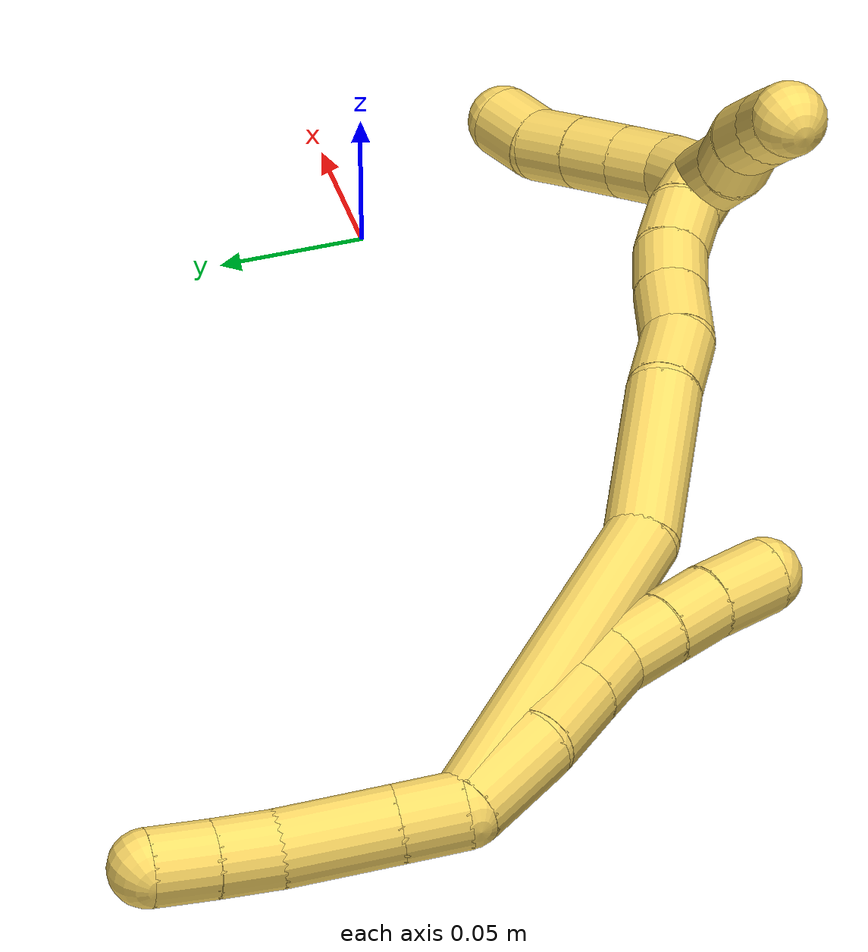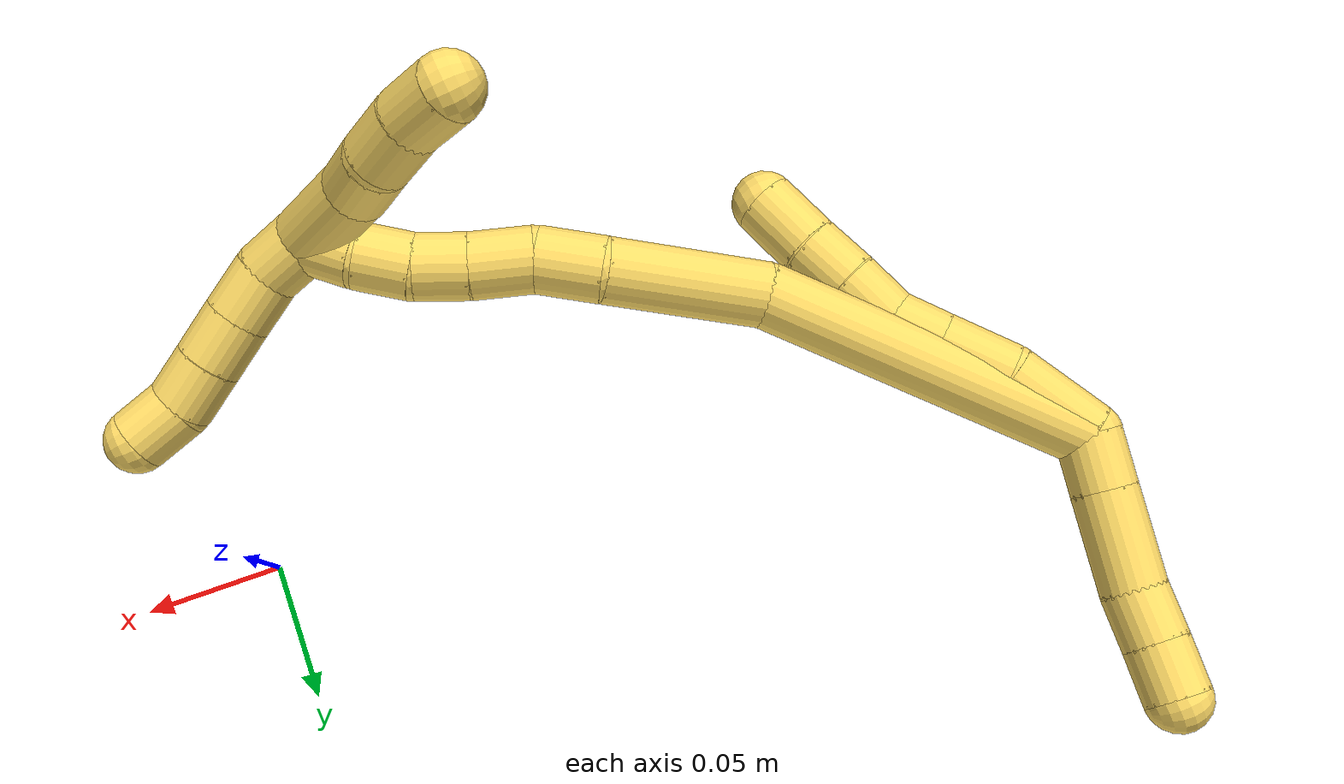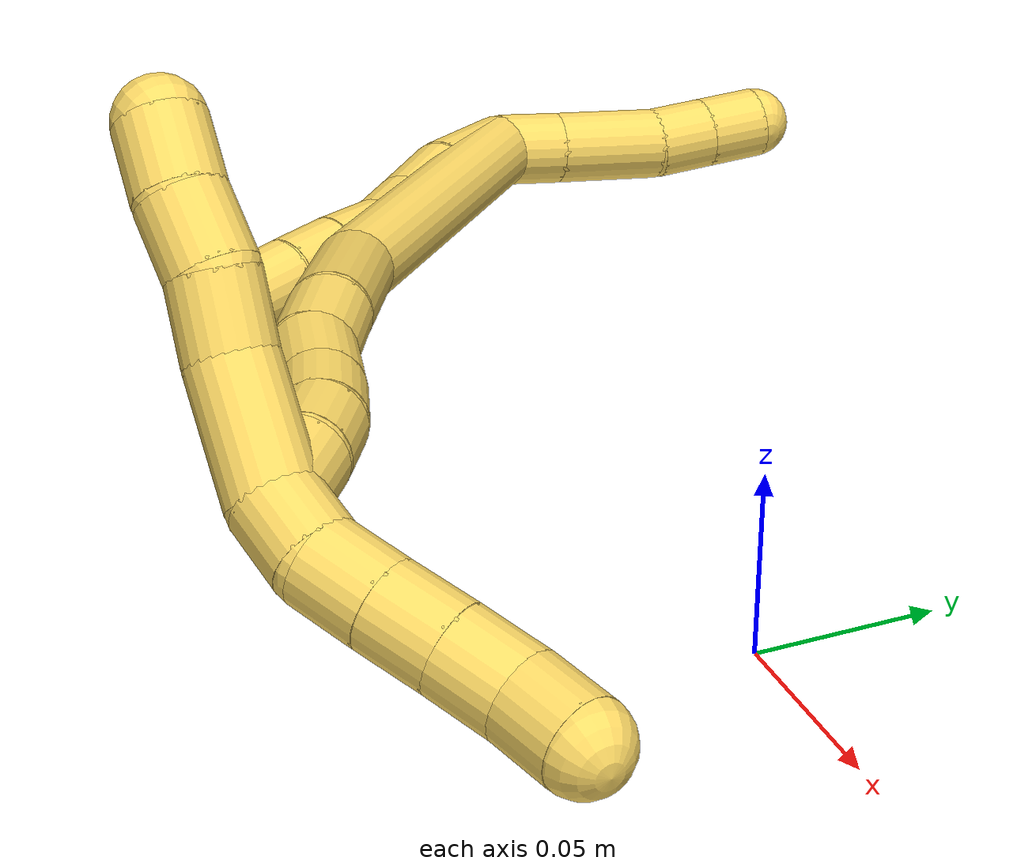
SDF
<sdf version="1.7">
 <world name="default">
  <model name="5">
   <static>0</static>
   <link name="5">
    <collision name="collision-cylinder-e_1_2_8">
     <pose>0.001551 -0.01566 0.008511 1.07294 0.086777 0.051622</pose>
     <geometry><cylinder><radius>0.0125</radius><length>0.035782</length></cylinder></geometry>
     <surface>
      <friction><ode><mu>1.16</mu><mu2>1.16</mu2><slip1>0</slip1><slip2>0</slip2></ode></friction>
      <contact><ode><kp>1e+06</kp><kd>1</kd><max_vel>0</max_vel><min_depth>0.001</min_depth></ode></contact>
     </surface>
    </collision>
    <visual name="visual-cylinder-e_1_2_8">
     <pose>0.001551 -0.01566 0.008511 1.07294 0.086777 0.051622</pose>
     <geometry><cylinder><radius>0.0125</radius><length>0.035782</length></cylinder></geometry>
     <material><ambient>1 0.858824 0.4 1</ambient></material>
    </visual>
    <collision name="collision-cylinder-e_2_8_9">
     <pose>0.005466 -0.04194 0.025754 0.882737 0.17038 0.080648</pose>
     <geometry><cylinder><radius>0.0125</radius><length>0.0279</length></cylinder></geometry>
     <surface>
      <friction><ode><mu>1.16</mu><mu2>1.16</mu2><slip1>0</slip1><slip2>0</slip2></ode></friction>
      <contact><ode><kp>1e+06</kp><kd>1</kd><max_vel>0</max_vel><min_depth>0.001</min_depth></ode></contact>
     </surface>
    </collision>
    <visual name="visual-cylinder-e_2_8_9">
     <pose>0.005466 -0.04194 0.025754 0.882737 0.17038 0.080648</pose>
     <geometry><cylinder><radius>0.0125</radius><length>0.0279</length></cylinder></geometry>
     <material><ambient>1 0.858824 0.4 1</ambient></material>
    </visual>
    <collision name="collision-cylinder-e_3_9_10">
     <pose>0.009507 -0.060253 0.040708 0.890532 0.167742 0.080197</pose>
     <geometry><cylinder><radius>0.0125</radius><length>0.020071</length></cylinder></geometry>
     <surface>
      <friction><ode><mu>1.16</mu><mu2>1.16</mu2><slip1>0</slip1><slip2>0</slip2></ode></friction>
      <contact><ode><kp>1e+06</kp><kd>1</kd><max_vel>0</max_vel><min_depth>0.001</min_depth></ode></contact>
     </surface>
    </collision>
    <visual name="visual-cylinder-e_3_9_10">
     <pose>0.009507 -0.060253 0.040708 0.890532 0.167742 0.080197</pose>
     <geometry><cylinder><radius>0.0125</radius><length>0.020071</length></cylinder></geometry>
     <material><ambient>1 0.858824 0.4 1</ambient></material>
    </visual>
    <collision name="collision-cylinder-e_4_10_11">
     <pose>0.012935 -0.077882 0.050467 1.22898 0.164651 0.116314</pose>
     <geometry><cylinder><radius>0.0125</radius><length>0.021385</length></cylinder></geometry>
     <surface>
      <friction><ode><mu>1.16</mu><mu2>1.16</mu2><slip1>0</slip1><slip2>0</slip2></ode></friction>
      <contact><ode><kp>1e+06</kp><kd>1</kd><max_vel>0</max_vel><min_depth>0.001</min_depth></ode></contact>
     </surface>
    </collision>
    <visual name="visual-cylinder-e_4_10_11">
     <pose>0.012935 -0.077882 0.050467 1.22898 0.164651 0.116314</pose>
     <geometry><cylinder><radius>0.0125</radius><length>0.021385</length></cylinder></geometry>
     <material><ambient>1 0.858824 0.4 1</ambient></material>
    </visual>
    <collision name="collision-cylinder-e_5_11_12">
     <pose>0.016751 -0.097029 0.057669 1.19189 0.205191 0.139425</pose>
     <geometry><cylinder><radius>0.0125</radius><length>0.020248</length></cylinder></geometry>
     <surface>
      <friction><ode><mu>1.16</mu><mu2>1.16</mu2><slip1>0</slip1><slip2>0</slip2></ode></friction>
      <contact><ode><kp>1e+06</kp><kd>1</kd><max_vel>0</max_vel><min_depth>0.001</min_depth></ode></contact>
     </surface>
    </collision>
    <visual name="visual-cylinder-e_5_11_12">
     <pose>0.016751 -0.097029 0.057669 1.19189 0.205191 0.139425</pose>
     <geometry><cylinder><radius>0.0125</radius><length>0.020248</length></cylinder></geometry>
     <material><ambient>1 0.858824 0.4 1</ambient></material>
    </visual>
    <collision name="collision-cylinder-e_6_12_6">
     <pose>0.022096 -0.117462 0.065168 1.24179 0.269938 0.193649</pose>
     <geometry><cylinder><radius>0.0125</radius><length>0.024614</length></cylinder></geometry>
     <surface>
      <friction><ode><mu>1.16</mu><mu2>1.16</mu2><slip1>0</slip1><slip2>0</slip2></ode></friction>
      <contact><ode><kp>1e+06</kp><kd>1</kd><max_vel>0</max_vel><min_depth>0.001</min_depth></ode></contact>
     </surface>
    </collision>
    <visual name="visual-cylinder-e_6_12_6">
     <pose>0.022096 -0.117462 0.065168 1.24179 0.269938 0.193649</pose>
     <geometry><cylinder><radius>0.0125</radius><length>0.024614</length></cylinder></geometry>
     <material><ambient>1 0.858824 0.4 1</ambient></material>
    </visual>
    <collision name="collision-cylinder-e_1_2_13">
     <pose>-0.001372 0.01039 0.001944 -1.3858 -0.129067 0.107201</pose>
     <geometry><cylinder><radius>0.0125</radius><length>0.021319</length></cylinder></geometry>
     <surface>
      <friction><ode><mu>1.16</mu><mu2>1.16</mu2><slip1>0</slip1><slip2>0</slip2></ode></friction>
      <contact><ode><kp>1e+06</kp><kd>1</kd><max_vel>0</max_vel><min_depth>0.001</min_depth></ode></contact>
     </surface>
    </collision>
    <visual name="visual-cylinder-e_1_2_13">
     <pose>-0.001372 0.01039 0.001944 -1.3858 -0.129067 0.107201</pose>
     <geometry><cylinder><radius>0.0125</radius><length>0.021319</length></cylinder></geometry>
     <material><ambient>1 0.858824 0.4 1</ambient></material>
    </visual>
    <collision name="collision-cylinder-e_2_13_14">
     <pose>-0.00533 0.039154 0.00725 -1.38984 -0.137583 0.114751</pose>
     <geometry><cylinder><radius>0.0125</radius><length>0.037713</length></cylinder></geometry>
     <surface>
      <friction><ode><mu>1.16</mu><mu2>1.16</mu2><slip1>0</slip1><slip2>0</slip2></ode></friction>
      <contact><ode><kp>1e+06</kp><kd>1</kd><max_vel>0</max_vel><min_depth>0.001</min_depth></ode></contact>
     </surface>
    </collision>
    <visual name="visual-cylinder-e_2_13_14">
     <pose>-0.00533 0.039154 0.00725 -1.38984 -0.137583 0.114751</pose>
     <geometry><cylinder><radius>0.0125</radius><length>0.037713</length></cylinder></geometry>
     <material><ambient>1 0.858824 0.4 1</ambient></material>
    </visual>
    <collision name="collision-cylinder-e_3_14_15">
     <pose>-0.010622 0.06726 0.011639 -1.46564 -0.269725 0.243036</pose>
     <geometry><cylinder><radius>0.0125</radius><length>0.020309</length></cylinder></geometry>
     <surface>
      <friction><ode><mu>1.16</mu><mu2>1.16</mu2><slip1>0</slip1><slip2>0</slip2></ode></friction>
      <contact><ode><kp>1e+06</kp><kd>1</kd><max_vel>0</max_vel><min_depth>0.001</min_depth></ode></contact>
     </surface>
    </collision>
    <visual name="visual-cylinder-e_3_14_15">
     <pose>-0.010622 0.06726 0.011639 -1.46564 -0.269725 0.243036</pose>
     <geometry><cylinder><radius>0.0125</radius><length>0.020309</length></cylinder></geometry>
     <material><ambient>1 0.858824 0.4 1</ambient></material>
    </visual>
    <collision name="collision-cylinder-e_4_15_5">
     <pose>-0.016174 0.086845 0.013914 -1.44484 -0.279186 0.246418</pose>
     <geometry><cylinder><radius>0.0125</radius><length>0.02066</length></cylinder></geometry>
     <surface>
      <friction><ode><mu>1.16</mu><mu2>1.16</mu2><slip1>0</slip1><slip2>0</slip2></ode></friction>
      <contact><ode><kp>1e+06</kp><kd>1</kd><max_vel>0</max_vel><min_depth>0.001</min_depth></ode></contact>
     </surface>
    </collision>
    <visual name="visual-cylinder-e_4_15_5">
     <pose>-0.016174 0.086845 0.013914 -1.44484 -0.279186 0.246418</pose>
     <geometry><cylinder><radius>0.0125</radius><length>0.02066</length></cylinder></geometry>
     <material><ambient>1 0.858824 0.4 1</ambient></material>
    </visual>
    <collision name="collision-cylinder-e_1_2_16">
     <pose>0.002436 -0.048455 0.04269 0.848557 0.037707 0.017035</pose>
     <geometry><cylinder><radius>0.0125</radius><length>0.129248</length></cylinder></geometry>
     <surface>
      <friction><ode><mu>1.16</mu><mu2>1.16</mu2><slip1>0</slip1><slip2>0</slip2></ode></friction>
      <contact><ode><kp>1e+06</kp><kd>1</kd><max_vel>0</max_vel><min_depth>0.001</min_depth></ode></contact>
     </surface>
    </collision>
    <visual name="visual-cylinder-e_1_2_16">
     <pose>0.002436 -0.048455 0.04269 0.848557 0.037707 0.017035</pose>
     <geometry><cylinder><radius>0.0125</radius><length>0.129248</length></cylinder></geometry>
     <material><ambient>1 0.858824 0.4 1</ambient></material>
    </visual>
    <collision name="collision-cylinder-e_2_16_17">
     <pose>-0.000358 -0.113462 0.110432 0.583891 -0.172484 -0.051954</pose>
     <geometry><cylinder><radius>0.0125</radius><length>0.060955</length></cylinder></geometry>
     <surface>
      <friction><ode><mu>1.16</mu><mu2>1.16</mu2><slip1>0</slip1><slip2>0</slip2></ode></friction>
      <contact><ode><kp>1e+06</kp><kd>1</kd><max_vel>0</max_vel><min_depth>0.001</min_depth></ode></contact>
     </surface>
    </collision>
    <visual name="visual-cylinder-e_2_16_17">
     <pose>-0.000358 -0.113462 0.110432 0.583891 -0.172484 -0.051954</pose>
     <geometry><cylinder><radius>0.0125</radius><length>0.060955</length></cylinder></geometry>
     <material><ambient>1 0.858824 0.4 1</ambient></material>
    </visual>
    <collision name="collision-cylinder-e_3_17_18">
     <pose>-0.005194 -0.137048 0.145846 0.596355 0.031571 0.009704</pose>
     <geometry><cylinder><radius>0.0125</radius><length>0.025063</length></cylinder></geometry>
     <surface>
      <friction><ode><mu>1.16</mu><mu2>1.16</mu2><slip1>0</slip1><slip2>0</slip2></ode></friction>
      <contact><ode><kp>1e+06</kp><kd>1</kd><max_vel>0</max_vel><min_depth>0.001</min_depth></ode></contact>
     </surface>
    </collision>
    <visual name="visual-cylinder-e_3_17_18">
     <pose>-0.005194 -0.137048 0.145846 0.596355 0.031571 0.009704</pose>
     <geometry><cylinder><radius>0.0125</radius><length>0.025063</length></cylinder></geometry>
     <material><ambient>1 0.858824 0.4 1</ambient></material>
    </visual>
    <collision name="collision-cylinder-e_4_18_19">
     <pose>-0.005038 -0.147993 0.167508 0.333147 -0.020085 -0.003377</pose>
     <geometry><cylinder><radius>0.0125</radius><length>0.023919</length></cylinder></geometry>
     <surface>
      <friction><ode><mu>1.16</mu><mu2>1.16</mu2><slip1>0</slip1><slip2>0</slip2></ode></friction>
      <contact><ode><kp>1e+06</kp><kd>1</kd><max_vel>0</max_vel><min_depth>0.001</min_depth></ode></contact>
     </surface>
    </collision>
    <visual name="visual-cylinder-e_4_18_19">
     <pose>-0.005038 -0.147993 0.167508 0.333147 -0.020085 -0.003377</pose>
     <geometry><cylinder><radius>0.0125</radius><length>0.023919</length></cylinder></geometry>
     <material><ambient>1 0.858824 0.4 1</ambient></material>
    </visual>
    <collision name="collision-cylinder-e_5_19_20">
     <pose>-0.005801 -0.156026 0.187966 0.423015 -0.051989 -0.011165</pose>
     <geometry><cylinder><radius>0.0125</radius><length>0.020113</length></cylinder></geometry>
     <surface>
      <friction><ode><mu>1.16</mu><mu2>1.16</mu2><slip1>0</slip1><slip2>0</slip2></ode></friction>
      <contact><ode><kp>1e+06</kp><kd>1</kd><max_vel>0</max_vel><min_depth>0.001</min_depth></ode></contact>
     </surface>
    </collision>
    <visual name="visual-cylinder-e_5_19_20">
     <pose>-0.005801 -0.156026 0.187966 0.423015 -0.051989 -0.011165</pose>
     <geometry><cylinder><radius>0.0125</radius><length>0.020113</length></cylinder></geometry>
     <material><ambient>1 0.858824 0.4 1</ambient></material>
    </visual>
    <collision name="collision-cylinder-e_6_20_21">
     <pose>-0.006405 -0.166248 0.205306 0.640501 -0.007989 -0.00265</pose>
     <geometry><cylinder><radius>0.0125</radius><length>0.020412</length></cylinder></geometry>
     <surface>
      <friction><ode><mu>1.16</mu><mu2>1.16</mu2><slip1>0</slip1><slip2>0</slip2></ode></friction>
      <contact><ode><kp>1e+06</kp><kd>1</kd><max_vel>0</max_vel><min_depth>0.001</min_depth></ode></contact>
     </surface>
    </collision>
    <visual name="visual-cylinder-e_6_20_21">
     <pose>-0.006405 -0.166248 0.205306 0.640501 -0.007989 -0.00265</pose>
     <geometry><cylinder><radius>0.0125</radius><length>0.020412</length></cylinder></geometry>
     <material><ambient>1 0.858824 0.4 1</ambient></material>
    </visual>
    <collision name="collision-cylinder-e_7_21_1">
     <pose>-0.005114 -0.179194 0.220847 0.749504 0.135718 0.053453</pose>
     <geometry><cylinder><radius>0.0125</radius><length>0.02029</length></cylinder></geometry>
     <surface>
      <friction><ode><mu>1.16</mu><mu2>1.16</mu2><slip1>0</slip1><slip2>0</slip2></ode></friction>
      <contact><ode><kp>1e+06</kp><kd>1</kd><max_vel>0</max_vel><min_depth>0.001</min_depth></ode></contact>
     </surface>
    </collision>
    <visual name="visual-cylinder-e_7_21_1">
     <pose>-0.005114 -0.179194 0.220847 0.749504 0.135718 0.053453</pose>
     <geometry><cylinder><radius>0.0125</radius><length>0.02029</length></cylinder></geometry>
     <material><ambient>1 0.858824 0.4 1</ambient></material>
    </visual>
    <collision name="collision-cylinder-e_1_1_22">
     <pose>-0.015697 -0.188167 0.214732 2.98519 -0.71967 -2.73088</pose>
     <geometry><cylinder><radius>0.0125</radius><length>0.036275</length></cylinder></geometry>
     <surface>
      <friction><ode><mu>1.16</mu><mu2>1.16</mu2><slip1>0</slip1><slip2>0</slip2></ode></friction>
      <contact><ode><kp>1e+06</kp><kd>1</kd><max_vel>0</max_vel><min_depth>0.001</min_depth></ode></contact>
     </surface>
    </collision>
    <visual name="visual-cylinder-e_1_1_22">
     <pose>-0.015697 -0.188167 0.214732 2.98519 -0.71967 -2.73088</pose>
     <geometry><cylinder><radius>0.0125</radius><length>0.036275</length></cylinder></geometry>
     <material><ambient>1 0.858824 0.4 1</ambient></material>
    </visual>
    <collision name="collision-cylinder-e_2_22_23">
     <pose>-0.036273 -0.191639 0.194871 2.93382 -0.922674 -2.72812</pose>
     <geometry><cylinder><radius>0.0125</radius><length>0.021629</length></cylinder></geometry>
     <surface>
      <friction><ode><mu>1.16</mu><mu2>1.16</mu2><slip1>0</slip1><slip2>0</slip2></ode></friction>
      <contact><ode><kp>1e+06</kp><kd>1</kd><max_vel>0</max_vel><min_depth>0.001</min_depth></ode></contact>
     </surface>
    </collision>
    <visual name="visual-cylinder-e_2_22_23">
     <pose>-0.036273 -0.191639 0.194871 2.93382 -0.922674 -2.72812</pose>
     <geometry><cylinder><radius>0.0125</radius><length>0.021629</length></cylinder></geometry>
     <material><ambient>1 0.858824 0.4 1</ambient></material>
    </visual>
    <collision name="collision-cylinder-e_3_23_24">
     <pose>-0.051436 -0.195156 0.180555 2.87438 -0.672212 -2.40705</pose>
     <geometry><cylinder><radius>0.0125</radius><length>0.021009</length></cylinder></geometry>
     <surface>
      <friction><ode><mu>1.16</mu><mu2>1.16</mu2><slip1>0</slip1><slip2>0</slip2></ode></friction>
      <contact><ode><kp>1e+06</kp><kd>1</kd><max_vel>0</max_vel><min_depth>0.001</min_depth></ode></contact>
     </surface>
    </collision>
    <visual name="visual-cylinder-e_3_23_24">
     <pose>-0.051436 -0.195156 0.180555 2.87438 -0.672212 -2.40705</pose>
     <geometry><cylinder><radius>0.0125</radius><length>0.021009</length></cylinder></geometry>
     <material><ambient>1 0.858824 0.4 1</ambient></material>
    </visual>
    <collision name="collision-cylinder-e_4_24_4">
     <pose>-0.064479 -0.197978 0.164353 3.06293 -0.66444 -2.91446</pose>
     <geometry><cylinder><radius>0.0125</radius><length>0.021087</length></cylinder></geometry>
     <surface>
      <friction><ode><mu>1.16</mu><mu2>1.16</mu2><slip1>0</slip1><slip2>0</slip2></ode></friction>
      <contact><ode><kp>1e+06</kp><kd>1</kd><max_vel>0</max_vel><min_depth>0.001</min_depth></ode></contact>
     </surface>
    </collision>
    <visual name="visual-cylinder-e_4_24_4">
     <pose>-0.064479 -0.197978 0.164353 3.06293 -0.66444 -2.91446</pose>
     <geometry><cylinder><radius>0.0125</radius><length>0.021087</length></cylinder></geometry>
     <material><ambient>1 0.858824 0.4 1</ambient></material>
    </visual>
    <collision name="collision-cylinder-e_1_1_25">
     <pose>-0.001078 -0.183902 0.237603 -0.223971 0.269625 -0.030504</pose>
     <geometry><cylinder><radius>0.0125</radius><length>0.02</length></cylinder></geometry>
     <surface>
      <friction><ode><mu>1.16</mu><mu2>1.16</mu2><slip1>0</slip1><slip2>0</slip2></ode></friction>
      <contact><ode><kp>1e+06</kp><kd>1</kd><max_vel>0</max_vel><min_depth>0.001</min_depth></ode></contact>
     </surface>
    </collision>
    <visual name="visual-cylinder-e_1_1_25">
     <pose>-0.001078 -0.183902 0.237603 -0.223971 0.269625 -0.030504</pose>
     <geometry><cylinder><radius>0.0125</radius><length>0.02</length></cylinder></geometry>
     <material><ambient>1 0.858824 0.4 1</ambient></material>
    </visual>
    <collision name="collision-cylinder-e_2_25_26">
     <pose>0.002727 -0.176952 0.255695 -0.505283 0.114339 -0.029548</pose>
     <geometry><cylinder><radius>0.0125</radius><length>0.02</length></cylinder></geometry>
     <surface>
      <friction><ode><mu>1.16</mu><mu2>1.16</mu2><slip1>0</slip1><slip2>0</slip2></ode></friction>
      <contact><ode><kp>1e+06</kp><kd>1</kd><max_vel>0</max_vel><min_depth>0.001</min_depth></ode></contact>
     </surface>
    </collision>
    <visual name="visual-cylinder-e_2_25_26">
     <pose>0.002727 -0.176952 0.255695 -0.505283 0.114339 -0.029548</pose>
     <geometry><cylinder><radius>0.0125</radius><length>0.02</length></cylinder></geometry>
     <material><ambient>1 0.858824 0.4 1</ambient></material>
    </visual>
    <collision name="collision-cylinder-e_3_26_27">
     <pose>0.004867 -0.167167 0.273004 -0.523765 0.100099 -0.026851</pose>
     <geometry><cylinder><radius>0.0125</radius><length>0.02</length></cylinder></geometry>
     <surface>
      <friction><ode><mu>1.16</mu><mu2>1.16</mu2><slip1>0</slip1><slip2>0</slip2></ode></friction>
      <contact><ode><kp>1e+06</kp><kd>1</kd><max_vel>0</max_vel><min_depth>0.001</min_depth></ode></contact>
     </surface>
    </collision>
    <visual name="visual-cylinder-e_3_26_27">
     <pose>0.004867 -0.167167 0.273004 -0.523765 0.100099 -0.026851</pose>
     <geometry><cylinder><radius>0.0125</radius><length>0.02</length></cylinder></geometry>
     <material><ambient>1 0.858824 0.4 1</ambient></material>
    </visual>
    <collision name="collision-cylinder-e_4_27_28">
     <pose>0.00706 -0.157294 0.290257 -0.51566 0.119649 -0.031586</pose>
     <geometry><cylinder><radius>0.0125</radius><length>0.02</length></cylinder></geometry>
     <surface>
      <friction><ode><mu>1.16</mu><mu2>1.16</mu2><slip1>0</slip1><slip2>0</slip2></ode></friction>
      <contact><ode><kp>1e+06</kp><kd>1</kd><max_vel>0</max_vel><min_depth>0.001</min_depth></ode></contact>
     </surface>
    </collision>
    <visual name="visual-cylinder-e_4_27_28">
     <pose>0.00706 -0.157294 0.290257 -0.51566 0.119649 -0.031586</pose>
     <geometry><cylinder><radius>0.0125</radius><length>0.02</length></cylinder></geometry>
     <material><ambient>1 0.858824 0.4 1</ambient></material>
    </visual>
    <collision name="collision-cylinder-e_5_28_3">
     <pose>0.008198 -0.149998 0.308602 -0.242452 -0.005603 0.000683</pose>
     <geometry><cylinder><radius>0.0125</radius><length>0.02</length></cylinder></geometry>
     <surface>
      <friction><ode><mu>1.16</mu><mu2>1.16</mu2><slip1>0</slip1><slip2>0</slip2></ode></friction>
      <contact><ode><kp>1e+06</kp><kd>1</kd><max_vel>0</max_vel><min_depth>0.001</min_depth></ode></contact>
     </surface>
    </collision>
    <visual name="visual-cylinder-e_5_28_3">
     <pose>0.008198 -0.149998 0.308602 -0.242452 -0.005603 0.000683</pose>
     <geometry><cylinder><radius>0.0125</radius><length>0.02</length></cylinder></geometry>
     <material><ambient>1 0.858824 0.4 1</ambient></material>
    </visual>
    <collision name="collision-sphere-3">
     <pose>0.008142 -0.147597 0.31831 0 -0 0</pose>
     <geometry><sphere><radius>0.0125</radius></sphere></geometry>
     <surface>
      <friction><ode><mu>1.16</mu><mu2>1.16</mu2><slip1>0</slip1><slip2>0</slip2></ode></friction>
      <contact><ode><kp>1e+06</kp><kd>1</kd><max_vel>0</max_vel><min_depth>0.001</min_depth></ode></contact>
     </surface>
    </collision>
    <visual name="visual-sphere-3">
     <pose>0.008142 -0.147597 0.31831 0 -0 0</pose>
     <geometry><sphere><radius>0.0125</radius></sphere></geometry>
     <material><ambient>1 0.858824 0.4 1</ambient></material>
    </visual>
    <collision name="collision-sphere-28">
     <pose>0.008254 -0.152399 0.298895 0 -0 0</pose>
     <geometry><sphere><radius>0.0125</radius></sphere></geometry>
     <surface>
      <friction><ode><mu>1.16</mu><mu2>1.16</mu2><slip1>0</slip1><slip2>0</slip2></ode></friction>
      <contact><ode><kp>1e+06</kp><kd>1</kd><max_vel>0</max_vel><min_depth>0.001</min_depth></ode></contact>
     </surface>
    </collision>
    <visual name="visual-sphere-28">
     <pose>0.008254 -0.152399 0.298895 0 -0 0</pose>
     <geometry><sphere><radius>0.0125</radius></sphere></geometry>
     <material><ambient>1 0.858824 0.4 1</ambient></material>
    </visual>
    <collision name="collision-sphere-27">
     <pose>0.005866 -0.16219 0.28162 0 -0 0</pose>
     <geometry><sphere><radius>0.0125</radius></sphere></geometry>
     <surface>
      <friction><ode><mu>1.16</mu><mu2>1.16</mu2><slip1>0</slip1><slip2>0</slip2></ode></friction>
      <contact><ode><kp>1e+06</kp><kd>1</kd><max_vel>0</max_vel><min_depth>0.001</min_depth></ode></contact>
     </surface>
    </collision>
    <visual name="visual-sphere-27">
     <pose>0.005866 -0.16219 0.28162 0 -0 0</pose>
     <geometry><sphere><radius>0.0125</radius></sphere></geometry>
     <material><ambient>1 0.858824 0.4 1</ambient></material>
    </visual>
    <collision name="collision-sphere-26">
     <pose>0.003868 -0.172143 0.264388 0 -0 0</pose>
     <geometry><sphere><radius>0.0125</radius></sphere></geometry>
     <surface>
      <friction><ode><mu>1.16</mu><mu2>1.16</mu2><slip1>0</slip1><slip2>0</slip2></ode></friction>
      <contact><ode><kp>1e+06</kp><kd>1</kd><max_vel>0</max_vel><min_depth>0.001</min_depth></ode></contact>
     </surface>
    </collision>
    <visual name="visual-sphere-26">
     <pose>0.003868 -0.172143 0.264388 0 -0 0</pose>
     <geometry><sphere><radius>0.0125</radius></sphere></geometry>
     <material><ambient>1 0.858824 0.4 1</ambient></material>
    </visual>
    <collision name="collision-sphere-25">
     <pose>0.001586 -0.181761 0.247001 0 -0 0</pose>
     <geometry><sphere><radius>0.0125</radius></sphere></geometry>
     <surface>
      <friction><ode><mu>1.16</mu><mu2>1.16</mu2><slip1>0</slip1><slip2>0</slip2></ode></friction>
      <contact><ode><kp>1e+06</kp><kd>1</kd><max_vel>0</max_vel><min_depth>0.001</min_depth></ode></contact>
     </surface>
    </collision>
    <visual name="visual-sphere-25">
     <pose>0.001586 -0.181761 0.247001 0 -0 0</pose>
     <geometry><sphere><radius>0.0125</radius></sphere></geometry>
     <material><ambient>1 0.858824 0.4 1</ambient></material>
    </visual>
    <collision name="collision-sphere-4">
     <pose>-0.07098 -0.19863 0.156078 0 -0 0</pose>
     <geometry><sphere><radius>0.0125</radius></sphere></geometry>
     <surface>
      <friction><ode><mu>1.16</mu><mu2>1.16</mu2><slip1>0</slip1><slip2>0</slip2></ode></friction>
      <contact><ode><kp>1e+06</kp><kd>1</kd><max_vel>0</max_vel><min_depth>0.001</min_depth></ode></contact>
     </surface>
    </collision>
    <visual name="visual-sphere-4">
     <pose>-0.07098 -0.19863 0.156078 0 -0 0</pose>
     <geometry><sphere><radius>0.0125</radius></sphere></geometry>
     <material><ambient>1 0.858824 0.4 1</ambient></material>
    </visual>
    <collision name="collision-sphere-24">
     <pose>-0.057977 -0.197326 0.172627 0 -0 0</pose>
     <geometry><sphere><radius>0.0125</radius></sphere></geometry>
     <surface>
      <friction><ode><mu>1.16</mu><mu2>1.16</mu2><slip1>0</slip1><slip2>0</slip2></ode></friction>
      <contact><ode><kp>1e+06</kp><kd>1</kd><max_vel>0</max_vel><min_depth>0.001</min_depth></ode></contact>
     </surface>
    </collision>
    <visual name="visual-sphere-24">
     <pose>-0.057977 -0.197326 0.172627 0 -0 0</pose>
     <geometry><sphere><radius>0.0125</radius></sphere></geometry>
     <material><ambient>1 0.858824 0.4 1</ambient></material>
    </visual>
    <collision name="collision-sphere-23">
     <pose>-0.044894 -0.192985 0.188483 0 -0 0</pose>
     <geometry><sphere><radius>0.0125</radius></sphere></geometry>
     <surface>
      <friction><ode><mu>1.16</mu><mu2>1.16</mu2><slip1>0</slip1><slip2>0</slip2></ode></friction>
      <contact><ode><kp>1e+06</kp><kd>1</kd><max_vel>0</max_vel><min_depth>0.001</min_depth></ode></contact>
     </surface>
    </collision>
    <visual name="visual-sphere-23">
     <pose>-0.044894 -0.192985 0.188483 0 -0 0</pose>
     <geometry><sphere><radius>0.0125</radius></sphere></geometry>
     <material><ambient>1 0.858824 0.4 1</ambient></material>
    </visual>
    <collision name="collision-sphere-22">
     <pose>-0.027652 -0.190292 0.201259 0 -0 0</pose>
     <geometry><sphere><radius>0.0125</radius></sphere></geometry>
     <surface>
      <friction><ode><mu>1.16</mu><mu2>1.16</mu2><slip1>0</slip1><slip2>0</slip2></ode></friction>
      <contact><ode><kp>1e+06</kp><kd>1</kd><max_vel>0</max_vel><min_depth>0.001</min_depth></ode></contact>
     </surface>
    </collision>
    <visual name="visual-sphere-22">
     <pose>-0.027652 -0.190292 0.201259 0 -0 0</pose>
     <geometry><sphere><radius>0.0125</radius></sphere></geometry>
     <material><ambient>1 0.858824 0.4 1</ambient></material>
    </visual>
    <collision name="collision-sphere-1">
     <pose>-0.003742 -0.186043 0.228205 0 -0 0</pose>
     <geometry><sphere><radius>0.0125</radius></sphere></geometry>
     <surface>
      <friction><ode><mu>1.16</mu><mu2>1.16</mu2><slip1>0</slip1><slip2>0</slip2></ode></friction>
      <contact><ode><kp>1e+06</kp><kd>1</kd><max_vel>0</max_vel><min_depth>0.001</min_depth></ode></contact>
     </surface>
    </collision>
    <visual name="visual-sphere-1">
     <pose>-0.003742 -0.186043 0.228205 0 -0 0</pose>
     <geometry><sphere><radius>0.0125</radius></sphere></geometry>
     <material><ambient>1 0.858824 0.4 1</ambient></material>
    </visual>
    <collision name="collision-sphere-21">
     <pose>-0.006487 -0.172346 0.213489 0 -0 0</pose>
     <geometry><sphere><radius>0.0125</radius></sphere></geometry>
     <surface>
      <friction><ode><mu>1.16</mu><mu2>1.16</mu2><slip1>0</slip1><slip2>0</slip2></ode></friction>
      <contact><ode><kp>1e+06</kp><kd>1</kd><max_vel>0</max_vel><min_depth>0.001</min_depth></ode></contact>
     </surface>
    </collision>
    <visual name="visual-sphere-21">
     <pose>-0.006487 -0.172346 0.213489 0 -0 0</pose>
     <geometry><sphere><radius>0.0125</radius></sphere></geometry>
     <material><ambient>1 0.858824 0.4 1</ambient></material>
    </visual>
    <collision name="collision-sphere-12">
     <pose>0.018814 -0.106237 0.061336 0 -0 0</pose>
     <geometry><sphere><radius>0.0125</radius></sphere></geometry>
     <surface>
      <friction><ode><mu>1.16</mu><mu2>1.16</mu2><slip1>0</slip1><slip2>0</slip2></ode></friction>
      <contact><ode><kp>1e+06</kp><kd>1</kd><max_vel>0</max_vel><min_depth>0.001</min_depth></ode></contact>
     </surface>
    </collision>
    <visual name="visual-sphere-12">
     <pose>0.018814 -0.106237 0.061336 0 -0 0</pose>
     <geometry><sphere><radius>0.0125</radius></sphere></geometry>
     <material><ambient>1 0.858824 0.4 1</ambient></material>
    </visual>
    <collision name="collision-sphere-11">
     <pose>0.014688 -0.08782 0.054003 0 -0 0</pose>
     <geometry><sphere><radius>0.0125</radius></sphere></geometry>
     <surface>
      <friction><ode><mu>1.16</mu><mu2>1.16</mu2><slip1>0</slip1><slip2>0</slip2></ode></friction>
      <contact><ode><kp>1e+06</kp><kd>1</kd><max_vel>0</max_vel><min_depth>0.001</min_depth></ode></contact>
     </surface>
    </collision>
    <visual name="visual-sphere-11">
     <pose>0.014688 -0.08782 0.054003 0 -0 0</pose>
     <geometry><sphere><radius>0.0125</radius></sphere></geometry>
     <material><ambient>1 0.858824 0.4 1</ambient></material>
    </visual>
    <collision name="collision-sphere-10">
     <pose>0.011183 -0.067945 0.046932 0 -0 0</pose>
     <geometry><sphere><radius>0.0125</radius></sphere></geometry>
     <surface>
      <friction><ode><mu>1.16</mu><mu2>1.16</mu2><slip1>0</slip1><slip2>0</slip2></ode></friction>
      <contact><ode><kp>1e+06</kp><kd>1</kd><max_vel>0</max_vel><min_depth>0.001</min_depth></ode></contact>
     </surface>
    </collision>
    <visual name="visual-sphere-10">
     <pose>0.011183 -0.067945 0.046932 0 -0 0</pose>
     <geometry><sphere><radius>0.0125</radius></sphere></geometry>
     <material><ambient>1 0.858824 0.4 1</ambient></material>
    </visual>
    <collision name="collision-sphere-9">
     <pose>0.007832 -0.05256 0.034484 0 -0 0</pose>
     <geometry><sphere><radius>0.0125</radius></sphere></geometry>
     <surface>
      <friction><ode><mu>1.16</mu><mu2>1.16</mu2><slip1>0</slip1><slip2>0</slip2></ode></friction>
      <contact><ode><kp>1e+06</kp><kd>1</kd><max_vel>0</max_vel><min_depth>0.001</min_depth></ode></contact>
     </surface>
    </collision>
    <visual name="visual-sphere-9">
     <pose>0.007832 -0.05256 0.034484 0 -0 0</pose>
     <geometry><sphere><radius>0.0125</radius></sphere></geometry>
     <material><ambient>1 0.858824 0.4 1</ambient></material>
    </visual>
    <collision name="collision-sphere-2">
     <geometry><sphere><radius>0.0125</radius></sphere></geometry>
     <surface>
      <friction><ode><mu>1.16</mu><mu2>1.16</mu2><slip1>0</slip1><slip2>0</slip2></ode></friction>
      <contact><ode><kp>1e+06</kp><kd>1</kd><max_vel>0</max_vel><min_depth>0.001</min_depth></ode></contact>
     </surface>
    </collision>
    <visual name="visual-sphere-2">
     <geometry><sphere><radius>0.0125</radius></sphere></geometry>
     <material><ambient>1 0.858824 0.4 1</ambient></material>
    </visual>
    <collision name="collision-sphere-19">
     <pose>-0.005279 -0.151903 0.178808 0 -0 0</pose>
     <geometry><sphere><radius>0.0125</radius></sphere></geometry>
     <surface>
      <friction><ode><mu>1.16</mu><mu2>1.16</mu2><slip1>0</slip1><slip2>0</slip2></ode></friction>
      <contact><ode><kp>1e+06</kp><kd>1</kd><max_vel>0</max_vel><min_depth>0.001</min_depth></ode></contact>
     </surface>
    </collision>
    <visual name="visual-sphere-19">
     <pose>-0.005279 -0.151903 0.178808 0 -0 0</pose>
     <geometry><sphere><radius>0.0125</radius></sphere></geometry>
     <material><ambient>1 0.858824 0.4 1</ambient></material>
    </visual>
    <collision name="collision-sphere-8">
     <pose>0.003101 -0.03132 0.017023 0 -0 0</pose>
     <geometry><sphere><radius>0.0125</radius></sphere></geometry>
     <surface>
      <friction><ode><mu>1.16</mu><mu2>1.16</mu2><slip1>0</slip1><slip2>0</slip2></ode></friction>
      <contact><ode><kp>1e+06</kp><kd>1</kd><max_vel>0</max_vel><min_depth>0.001</min_depth></ode></contact>
     </surface>
    </collision>
    <visual name="visual-sphere-8">
     <pose>0.003101 -0.03132 0.017023 0 -0 0</pose>
     <geometry><sphere><radius>0.0125</radius></sphere></geometry>
     <material><ambient>1 0.858824 0.4 1</ambient></material>
    </visual>
    <collision name="collision-sphere-6">
     <pose>0.025377 -0.128687 0.069 0 -0 0</pose>
     <geometry><sphere><radius>0.0125</radius></sphere></geometry>
     <surface>
      <friction><ode><mu>1.16</mu><mu2>1.16</mu2><slip1>0</slip1><slip2>0</slip2></ode></friction>
      <contact><ode><kp>1e+06</kp><kd>1</kd><max_vel>0</max_vel><min_depth>0.001</min_depth></ode></contact>
     </surface>
    </collision>
    <visual name="visual-sphere-6">
     <pose>0.025377 -0.128687 0.069 0 -0 0</pose>
     <geometry><sphere><radius>0.0125</radius></sphere></geometry>
     <material><ambient>1 0.858824 0.4 1</ambient></material>
    </visual>
    <collision name="collision-sphere-13">
     <pose>-0.002744 0.020781 0.003889 0 -0 0</pose>
     <geometry><sphere><radius>0.0125</radius></sphere></geometry>
     <surface>
      <friction><ode><mu>1.16</mu><mu2>1.16</mu2><slip1>0</slip1><slip2>0</slip2></ode></friction>
      <contact><ode><kp>1e+06</kp><kd>1</kd><max_vel>0</max_vel><min_depth>0.001</min_depth></ode></contact>
     </surface>
    </collision>
    <visual name="visual-sphere-13">
     <pose>-0.002744 0.020781 0.003889 0 -0 0</pose>
     <geometry><sphere><radius>0.0125</radius></sphere></geometry>
     <material><ambient>1 0.858824 0.4 1</ambient></material>
    </visual>
    <collision name="collision-sphere-14">
     <pose>-0.007916 0.057527 0.010612 0 -0 0</pose>
     <geometry><sphere><radius>0.0125</radius></sphere></geometry>
     <surface>
      <friction><ode><mu>1.16</mu><mu2>1.16</mu2><slip1>0</slip1><slip2>0</slip2></ode></friction>
      <contact><ode><kp>1e+06</kp><kd>1</kd><max_vel>0</max_vel><min_depth>0.001</min_depth></ode></contact>
     </surface>
    </collision>
    <visual name="visual-sphere-14">
     <pose>-0.007916 0.057527 0.010612 0 -0 0</pose>
     <geometry><sphere><radius>0.0125</radius></sphere></geometry>
     <material><ambient>1 0.858824 0.4 1</ambient></material>
    </visual>
    <collision name="collision-sphere-15">
     <pose>-0.013328 0.076994 0.012666 0 -0 0</pose>
     <geometry><sphere><radius>0.0125</radius></sphere></geometry>
     <surface>
      <friction><ode><mu>1.16</mu><mu2>1.16</mu2><slip1>0</slip1><slip2>0</slip2></ode></friction>
      <contact><ode><kp>1e+06</kp><kd>1</kd><max_vel>0</max_vel><min_depth>0.001</min_depth></ode></contact>
     </surface>
    </collision>
    <visual name="visual-sphere-15">
     <pose>-0.013328 0.076994 0.012666 0 -0 0</pose>
     <geometry><sphere><radius>0.0125</radius></sphere></geometry>
     <material><ambient>1 0.858824 0.4 1</ambient></material>
    </visual>
    <collision name="collision-sphere-5">
     <pose>-0.019021 0.096696 0.015161 0 -0 0</pose>
     <geometry><sphere><radius>0.0125</radius></sphere></geometry>
     <surface>
      <friction><ode><mu>1.16</mu><mu2>1.16</mu2><slip1>0</slip1><slip2>0</slip2></ode></friction>
      <contact><ode><kp>1e+06</kp><kd>1</kd><max_vel>0</max_vel><min_depth>0.001</min_depth></ode></contact>
     </surface>
    </collision>
    <visual name="visual-sphere-5">
     <pose>-0.019021 0.096696 0.015161 0 -0 0</pose>
     <geometry><sphere><radius>0.0125</radius></sphere></geometry>
     <material><ambient>1 0.858824 0.4 1</ambient></material>
    </visual>
    <collision name="collision-sphere-16">
     <pose>0.004872 -0.096909 0.085381 0 -0 0</pose>
     <geometry><sphere><radius>0.0125</radius></sphere></geometry>
     <surface>
      <friction><ode><mu>1.16</mu><mu2>1.16</mu2><slip1>0</slip1><slip2>0</slip2></ode></friction>
      <contact><ode><kp>1e+06</kp><kd>1</kd><max_vel>0</max_vel><min_depth>0.001</min_depth></ode></contact>
     </surface>
    </collision>
    <visual name="visual-sphere-16">
     <pose>0.004872 -0.096909 0.085381 0 -0 0</pose>
     <geometry><sphere><radius>0.0125</radius></sphere></geometry>
     <material><ambient>1 0.858824 0.4 1</ambient></material>
    </visual>
    <collision name="collision-sphere-17">
     <pose>-0.005589 -0.130014 0.135483 0 -0 0</pose>
     <geometry><sphere><radius>0.0125</radius></sphere></geometry>
     <surface>
      <friction><ode><mu>1.16</mu><mu2>1.16</mu2><slip1>0</slip1><slip2>0</slip2></ode></friction>
      <contact><ode><kp>1e+06</kp><kd>1</kd><max_vel>0</max_vel><min_depth>0.001</min_depth></ode></contact>
     </surface>
    </collision>
    <visual name="visual-sphere-17">
     <pose>-0.005589 -0.130014 0.135483 0 -0 0</pose>
     <geometry><sphere><radius>0.0125</radius></sphere></geometry>
     <material><ambient>1 0.858824 0.4 1</ambient></material>
    </visual>
    <collision name="collision-sphere-18">
     <pose>-0.004798 -0.144083 0.156209 0 -0 0</pose>
     <geometry><sphere><radius>0.0125</radius></sphere></geometry>
     <surface>
      <friction><ode><mu>1.16</mu><mu2>1.16</mu2><slip1>0</slip1><slip2>0</slip2></ode></friction>
      <contact><ode><kp>1e+06</kp><kd>1</kd><max_vel>0</max_vel><min_depth>0.001</min_depth></ode></contact>
     </surface>
    </collision>
    <visual name="visual-sphere-18">
     <pose>-0.004798 -0.144083 0.156209 0 -0 0</pose>
     <geometry><sphere><radius>0.0125</radius></sphere></geometry>
     <material><ambient>1 0.858824 0.4 1</ambient></material>
    </visual>
    <collision name="collision-sphere-20">
     <pose>-0.006324 -0.160149 0.197123 0 -0 0</pose>
     <geometry><sphere><radius>0.0125</radius></sphere></geometry>
     <surface>
      <friction><ode><mu>1.16</mu><mu2>1.16</mu2><slip1>0</slip1><slip2>0</slip2></ode></friction>
      <contact><ode><kp>1e+06</kp><kd>1</kd><max_vel>0</max_vel><min_depth>0.001</min_depth></ode></contact>
     </surface>
    </collision>
    <visual name="visual-sphere-20">
     <pose>-0.006324 -0.160149 0.197123 0 -0 0</pose>
     <geometry><sphere><radius>0.0125</radius></sphere></geometry>
     <material><ambient>1 0.858824 0.4 1</ambient></material>
    </visual>
    <inertial>
     <pose>-0.003852 -0.094501 0.113946 0 -0 0</pose>
     <mass>0.75</mass>
     <inertia>
      <ixx>0.000237</ixx>
      <ixy>0</ixy>
      <ixz>0</ixz>
      <iyy>0.00016</iyy>
      <iyz>0</iyz>
      <izz>0.000184</izz>
     </inertia>
    </inertial>
   </link>
   <pose>-0.298747 0.053137 0.016112 -1.94753 1.3541 -1.83971</pose>
  </model>
 </world>
</sdf>
